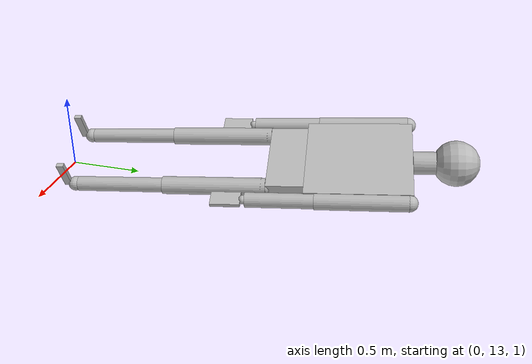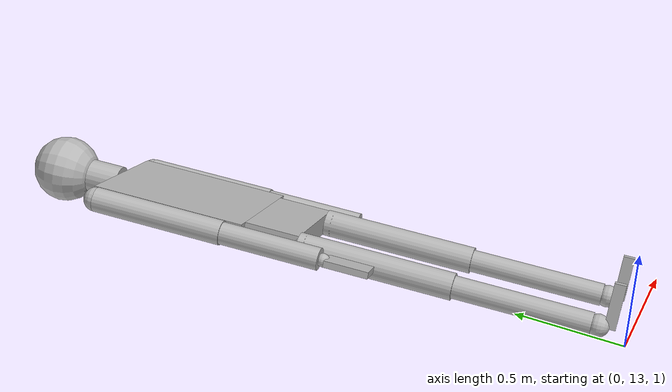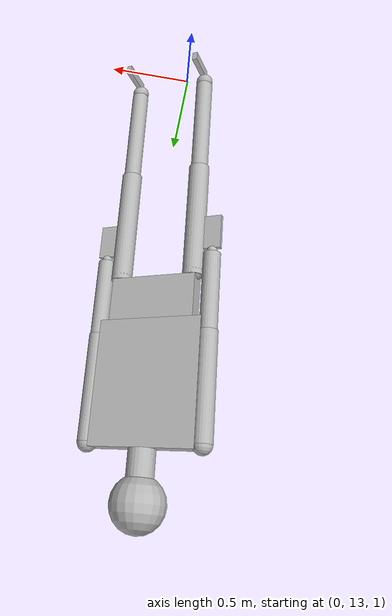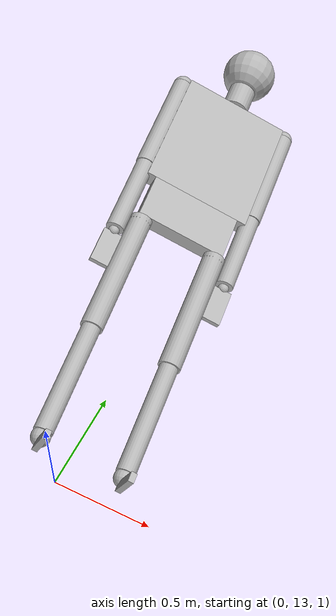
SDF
<sdf version="1.7">
 <world name="world_demo">
  <model name="ground_plane">
   <static>1</static>
   <link name="link">
    <collision name="collision">
     <geometry><plane><normal>0 0 1</normal><size>1 1</size></plane></geometry>
    </collision>
    <inertial>
     <mass>1</mass>
     <inertia><ixx>1</ixx><ixy>0</ixy><ixz>0</ixz><iyy>1</iyy><iyz>0</iyz><izz>1</izz></inertia>
    </inertial>
   </link>
  </model>
  <model name="ragdoll_clone">
   <pose>-0.072919 14.4451 1.18389 -1.39804 -1.16619 -0.042547</pose>
   <link name="hip">
    <inertial>
     <inertia><ixx>0.1</ixx><ixy>0</ixy><ixz>0</ixz><iyy>0.1</iyy><iyz>0</iyz><izz>0.1</izz></inertia>
     <mass>10</mass>
    </inertial>
    <collision name="hip_geom">
     <pose>0 0 0.125 0 -0 0</pose>
     <geometry><box><size>0.1 0.5 0.25</size></box></geometry>
     <surface>
      <friction><ode><mu>-1</mu><mu2>-1</mu2><fdir1>0 0 0</fdir1><slip1>0</slip1><slip2>0</slip2></ode></friction>
      <bounce><restitution_coefficient>0</restitution_coefficient><threshold>100000</threshold></bounce>
      <contact>
       <ode>
        <soft_cfm>0</soft_cfm>
        <soft_erp>0.2</soft_erp>
        <kp>1e+12</kp>
        <kd>1</kd>
        <max_vel>0</max_vel>
        <min_depth>0.001</min_depth>
       </ode>
      </contact>
     </surface>
    </collision>
    <visual name="hip_geom_visual">
     <pose>0 0 0.125 0 -0 0</pose>
     <geometry><box><size>0.1 0.5 0.25</size></box></geometry>
    </visual>
    <gravity>0</gravity>
   </link>
   <link name="l_thigh_pan">
    <pose>0 0.22 0 0 -0 0</pose>
    <inertial>
     <inertia><ixx>0.01</ixx><ixy>0</ixy><ixz>0</ixz><iyy>0.01</iyy><iyz>0</iyz><izz>0.01</izz></inertia>
     <mass>1</mass>
    </inertial>
    <collision name="l_thigh_pan_geom">
     <pose>0 0 -0.03 0 -0 0</pose>
     <geometry><sphere><radius>0.06</radius></sphere></geometry>
     <surface>
      <friction><ode><mu>-1</mu><mu2>-1</mu2><fdir1>0 0 0</fdir1><slip1>0</slip1><slip2>0</slip2></ode></friction>
      <bounce><restitution_coefficient>0</restitution_coefficient><threshold>100000</threshold></bounce>
      <contact>
       <ode>
        <soft_cfm>0</soft_cfm>
        <soft_erp>0.2</soft_erp>
        <kp>1e+12</kp>
        <kd>1</kd>
        <max_vel>0</max_vel>
        <min_depth>0.001</min_depth>
       </ode>
      </contact>
     </surface>
    </collision>
    <visual name="l_thigh_pan_geom_visual">
     <pose>0 0 -0.03 0 -0 0</pose>
     <geometry><sphere><radius>0.06</radius></sphere></geometry>
    </visual>
    <gravity>0</gravity>
   </link>
   <link name="l_thigh_lift">
    <pose>0 0.22 0 0 -0 0</pose>
    <inertial>
     <inertia><ixx>0.05</ixx><ixy>0</ixy><ixz>0</ixz><iyy>0.05</iyy><iyz>0</iyz><izz>0.05</izz></inertia>
     <mass>5</mass>
    </inertial>
    <collision name="l_thigh_lift_geom">
     <pose>0 0 -0.35 0 -0 0</pose>
     <geometry><cylinder><radius>0.06</radius><length>0.7</length></cylinder></geometry>
     <surface>
      <friction><ode><mu>-1</mu><mu2>-1</mu2><fdir1>0 0 0</fdir1><slip1>0</slip1><slip2>0</slip2></ode></friction>
      <bounce><restitution_coefficient>0</restitution_coefficient><threshold>100000</threshold></bounce>
      <contact>
       <ode>
        <soft_cfm>0</soft_cfm>
        <soft_erp>0.2</soft_erp>
        <kp>1e+12</kp>
        <kd>1</kd>
        <max_vel>0</max_vel>
        <min_depth>0.001</min_depth>
       </ode>
      </contact>
     </surface>
    </collision>
    <visual name="l_thigh_lift_geom_visual">
     <pose>0 0 -0.35 0 -0 0</pose>
     <geometry><cylinder><radius>0.06</radius><length>0.7</length></cylinder></geometry>
    </visual>
    <gravity>0</gravity>
   </link>
   <link name="l_calf">
    <pose>0 0.22 -0.7 0 -0 0</pose>
    <inertial>
     <inertia><ixx>0.02</ixx><ixy>0</ixy><ixz>0</ixz><iyy>0.02</iyy><iyz>0</iyz><izz>0.02</izz></inertia>
     <mass>2</mass>
    </inertial>
    <collision name="l_calf_geom">
     <pose>0 0 -0.3 0 -0 0</pose>
     <geometry><cylinder><radius>0.05</radius><length>0.6</length></cylinder></geometry>
     <surface>
      <friction><ode><mu>-1</mu><mu2>-1</mu2><fdir1>0 0 0</fdir1><slip1>0</slip1><slip2>0</slip2></ode></friction>
      <bounce><restitution_coefficient>0</restitution_coefficient><threshold>100000</threshold></bounce>
      <contact>
       <ode>
        <soft_cfm>0</soft_cfm>
        <soft_erp>0.2</soft_erp>
        <kp>1e+12</kp>
        <kd>1</kd>
        <max_vel>0</max_vel>
        <min_depth>0.001</min_depth>
       </ode>
      </contact>
     </surface>
    </collision>
    <visual name="l_calf_geom_visual">
     <pose>0 0 -0.3 0 -0 0</pose>
     <geometry><cylinder><radius>0.05</radius><length>0.6</length></cylinder></geometry>
    </visual>
    <gravity>0</gravity>
   </link>
   <link name="l_ankle">
    <pose>0 0.22 -1.325 0 -0 0</pose>
    <inertial>
     <inertia><ixx>0.01</ixx><ixy>0</ixy><ixz>0</ixz><iyy>0.01</iyy><iyz>0</iyz><izz>0.01</izz></inertia>
     <mass>1</mass>
    </inertial>
    <collision name="l_ankle_geom">
     <geometry><sphere><radius>0.05</radius></sphere></geometry>
     <surface>
      <friction><ode><mu>-1</mu><mu2>-1</mu2><fdir1>0 0 0</fdir1><slip1>0</slip1><slip2>0</slip2></ode></friction>
      <bounce><restitution_coefficient>0</restitution_coefficient><threshold>100000</threshold></bounce>
      <contact>
       <ode>
        <soft_cfm>0</soft_cfm>
        <soft_erp>0.2</soft_erp>
        <kp>1e+12</kp>
        <kd>1</kd>
        <max_vel>0</max_vel>
        <min_depth>0.001</min_depth>
       </ode>
      </contact>
     </surface>
    </collision>
    <visual name="l_ankle_geom_visual"><geometry><sphere><radius>0.05</radius></sphere></geometry></visual>
    <gravity>0</gravity>
   </link>
   <link name="l_foot">
    <pose>0 0.22 -1.35 0 -0 0</pose>
    <inertial>
     <pose>0.1 0 0 0 -0 0</pose>
     <inertia><ixx>0.01</ixx><ixy>0</ixy><ixz>0</ixz><iyy>0.01</iyy><iyz>0</iyz><izz>0.01</izz></inertia>
     <mass>1</mass>
    </inertial>
    <collision name="l_foot_geom">
     <pose>0.1 0 -0.025 0 -0 0</pose>
     <geometry><box><size>0.2 0.03 0.05</size></box></geometry>
     <surface>
      <friction><ode><mu>-1</mu><mu2>-1</mu2><fdir1>0 0 0</fdir1><slip1>0</slip1><slip2>0</slip2></ode></friction>
      <bounce><restitution_coefficient>0</restitution_coefficient><threshold>100000</threshold></bounce>
      <contact>
       <ode>
        <soft_cfm>0</soft_cfm>
        <soft_erp>0.2</soft_erp>
        <kp>1e+12</kp>
        <kd>1</kd>
        <max_vel>0</max_vel>
        <min_depth>0.001</min_depth>
       </ode>
      </contact>
     </surface>
    </collision>
    <visual name="l_foot_geom_visual">
     <pose>0.1 0 -0.025 0 -0 0</pose>
     <geometry><box><size>0.2 0.03 0.05</size></box></geometry>
    </visual>
   </link>
   <link name="r_thigh_pan">
    <pose>0 -0.22 0 0 -0 0</pose>
    <inertial>
     <inertia><ixx>0.01</ixx><ixy>0</ixy><ixz>0</ixz><iyy>0.01</iyy><iyz>0</iyz><izz>0.01</izz></inertia>
     <mass>1</mass>
    </inertial>
    <collision name="r_thigh_pan_geom">
     <pose>0 0 -0.03 0 -0 0</pose>
     <geometry><sphere><radius>0.06</radius></sphere></geometry>
     <surface>
      <friction><ode><mu>-1</mu><mu2>-1</mu2><fdir1>0 0 0</fdir1><slip1>0</slip1><slip2>0</slip2></ode></friction>
      <bounce><restitution_coefficient>0</restitution_coefficient><threshold>100000</threshold></bounce>
      <contact>
       <ode>
        <soft_cfm>0</soft_cfm>
        <soft_erp>0.2</soft_erp>
        <kp>1e+12</kp>
        <kd>1</kd>
        <max_vel>0</max_vel>
        <min_depth>0.001</min_depth>
       </ode>
      </contact>
     </surface>
    </collision>
    <visual name="r_thigh_pan_geom_visual">
     <pose>0 0 -0.03 0 -0 0</pose>
     <geometry><sphere><radius>0.06</radius></sphere></geometry>
    </visual>
    <gravity>0</gravity>
   </link>
   <link name="r_thigh_lift">
    <pose>0 -0.22 0 0 -0 0</pose>
    <inertial>
     <inertia><ixx>0.05</ixx><ixy>0</ixy><ixz>0</ixz><iyy>0.05</iyy><iyz>0</iyz><izz>0.05</izz></inertia>
     <mass>5</mass>
    </inertial>
    <collision name="r_thigh_lift_geom">
     <pose>0 0 -0.35 0 -0 0</pose>
     <geometry><cylinder><radius>0.06</radius><length>0.7</length></cylinder></geometry>
     <surface>
      <friction><ode><mu>-1</mu><mu2>-1</mu2><fdir1>0 0 0</fdir1><slip1>0</slip1><slip2>0</slip2></ode></friction>
      <bounce><restitution_coefficient>0</restitution_coefficient><threshold>100000</threshold></bounce>
      <contact>
       <ode>
        <soft_cfm>0</soft_cfm>
        <soft_erp>0.2</soft_erp>
        <kp>1e+12</kp>
        <kd>1</kd>
        <max_vel>0</max_vel>
        <min_depth>0.001</min_depth>
       </ode>
      </contact>
     </surface>
    </collision>
    <visual name="r_thigh_lift_geom_visual">
     <pose>0 0 -0.35 0 -0 0</pose>
     <geometry><cylinder><radius>0.06</radius><length>0.7</length></cylinder></geometry>
    </visual>
    <gravity>0</gravity>
   </link>
   <link name="r_calf">
    <pose>0 -0.22 -0.7 0 -0 0</pose>
    <inertial>
     <inertia><ixx>0.02</ixx><ixy>0</ixy><ixz>0</ixz><iyy>0.02</iyy><iyz>0</iyz><izz>0.02</izz></inertia>
     <mass>2</mass>
    </inertial>
    <collision name="r_calf_geom">
     <pose>0 0 -0.3 0 -0 0</pose>
     <geometry><cylinder><radius>0.05</radius><length>0.6</length></cylinder></geometry>
     <surface>
      <friction><ode><mu>-1</mu><mu2>-1</mu2><fdir1>0 0 0</fdir1><slip1>0</slip1><slip2>0</slip2></ode></friction>
      <bounce><restitution_coefficient>0</restitution_coefficient><threshold>100000</threshold></bounce>
      <contact>
       <ode>
        <soft_cfm>0</soft_cfm>
        <soft_erp>0.2</soft_erp>
        <kp>1e+12</kp>
        <kd>1</kd>
        <max_vel>0</max_vel>
        <min_depth>0.001</min_depth>
       </ode>
      </contact>
     </surface>
    </collision>
    <visual name="r_calf_geom_visual">
     <pose>0 0 -0.3 0 -0 0</pose>
     <geometry><cylinder><radius>0.05</radius><length>0.6</length></cylinder></geometry>
    </visual>
    <gravity>0</gravity>
   </link>
   <link name="r_ankle">
    <pose>0 -0.22 -1.325 0 -0 0</pose>
    <inertial>
     <inertia><ixx>0.01</ixx><ixy>0</ixy><ixz>0</ixz><iyy>0.01</iyy><iyz>0</iyz><izz>0.01</izz></inertia>
     <mass>1</mass>
    </inertial>
    <collision name="r_ankle_geom">
     <geometry><sphere><radius>0.05</radius></sphere></geometry>
     <surface>
      <friction><ode><mu>-1</mu><mu2>-1</mu2><fdir1>0 0 0</fdir1><slip1>0</slip1><slip2>0</slip2></ode></friction>
      <bounce><restitution_coefficient>0</restitution_coefficient><threshold>100000</threshold></bounce>
      <contact>
       <ode>
        <soft_cfm>0</soft_cfm>
        <soft_erp>0.2</soft_erp>
        <kp>1e+12</kp>
        <kd>1</kd>
        <max_vel>0</max_vel>
        <min_depth>0.001</min_depth>
       </ode>
      </contact>
     </surface>
    </collision>
    <visual name="r_ankle_geom_visual"><geometry><sphere><radius>0.05</radius></sphere></geometry></visual>
    <gravity>0</gravity>
   </link>
   <link name="r_foot">
    <pose>0 -0.22 -1.35 0 -0 0</pose>
    <inertial>
     <pose>0.1 0 0 0 -0 0</pose>
     <inertia><ixx>0.01</ixx><ixy>0</ixy><ixz>0</ixz><iyy>0.01</iyy><iyz>0</iyz><izz>0.01</izz></inertia>
     <mass>1</mass>
    </inertial>
    <collision name="r_foot_geom">
     <pose>0.1 0 -0.025 0 -0 0</pose>
     <geometry><box><size>0.2 0.03 0.05</size></box></geometry>
     <surface>
      <friction><ode><mu>-1</mu><mu2>-1</mu2><fdir1>0 0 0</fdir1><slip1>0</slip1><slip2>0</slip2></ode></friction>
      <bounce><restitution_coefficient>0</restitution_coefficient><threshold>100000</threshold></bounce>
      <contact>
       <ode>
        <soft_cfm>0</soft_cfm>
        <soft_erp>0.2</soft_erp>
        <kp>1e+12</kp>
        <kd>1</kd>
        <max_vel>0</max_vel>
        <min_depth>0.001</min_depth>
       </ode>
      </contact>
     </surface>
    </collision>
    <visual name="r_foot_geom_visual">
     <pose>0.1 0 -0.025 0 -0 0</pose>
     <geometry><box><size>0.2 0.03 0.05</size></box></geometry>
    </visual>
   </link>
   <link name="torso">
    <pose>0 0 0.25 0 -0 0</pose>
    <inertial>
     <inertia><ixx>0.3</ixx><ixy>0</ixy><ixz>0</ixz><iyy>0.3</iyy><iyz>0</iyz><izz>0.3</izz></inertia>
     <mass>30</mass>
    </inertial>
    <collision name="torso_geom">
     <pose>0 0 0.35 0 -0 0</pose>
     <geometry><box><size>0.1 0.6 0.7</size></box></geometry>
     <surface>
      <friction><ode><mu>-1</mu><mu2>-1</mu2><fdir1>0 0 0</fdir1><slip1>0</slip1><slip2>0</slip2></ode></friction>
      <bounce><restitution_coefficient>0</restitution_coefficient><threshold>100000</threshold></bounce>
      <contact>
       <ode>
        <soft_cfm>0</soft_cfm>
        <soft_erp>0.2</soft_erp>
        <kp>1e+12</kp>
        <kd>1</kd>
        <max_vel>0</max_vel>
        <min_depth>0.001</min_depth>
       </ode>
      </contact>
     </surface>
    </collision>
    <visual name="torso_geom_visual">
     <pose>0 0 0.35 0 -0 0</pose>
     <geometry><box><size>0.1 0.6 0.7</size></box></geometry>
    </visual>
    <gravity>0</gravity>
   </link>
   <link name="l_shoulder">
    <pose>0 0.3275 0.9225 0 -0 0</pose>
    <inertial>
     <inertia><ixx>0.01</ixx><ixy>0</ixy><ixz>0</ixz><iyy>0.01</iyy><iyz>0</iyz><izz>0.01</izz></inertia>
     <mass>1</mass>
    </inertial>
    <collision name="l_shoulder_geom">
     <geometry><sphere><radius>0.055</radius></sphere></geometry>
     <surface>
      <friction><ode><mu>-1</mu><mu2>-1</mu2><fdir1>0 0 0</fdir1><slip1>0</slip1><slip2>0</slip2></ode></friction>
      <bounce><restitution_coefficient>0</restitution_coefficient><threshold>100000</threshold></bounce>
      <contact>
       <ode>
        <soft_cfm>0</soft_cfm>
        <soft_erp>0.2</soft_erp>
        <kp>1e+12</kp>
        <kd>1</kd>
        <max_vel>0</max_vel>
        <min_depth>0.001</min_depth>
       </ode>
      </contact>
     </surface>
    </collision>
    <visual name="l_shoulder_geom_visual"><geometry><sphere><radius>0.055</radius></sphere></geometry></visual>
    <gravity>0</gravity>
   </link>
   <link name="l_upper_arm">
    <pose>0 0.3275 0.9225 0 -0 0</pose>
    <inertial>
     <inertia><ixx>0.02</ixx><ixy>0</ixy><ixz>0</ixz><iyy>0.02</iyy><iyz>0</iyz><izz>0.02</izz></inertia>
     <mass>2</mass>
    </inertial>
    <collision name="l_upper_arm_geom">
     <pose>0 0 -0.3 0 -0 0</pose>
     <geometry><cylinder><radius>0.055</radius><length>0.6</length></cylinder></geometry>
     <surface>
      <friction><ode><mu>-1</mu><mu2>-1</mu2><fdir1>0 0 0</fdir1><slip1>0</slip1><slip2>0</slip2></ode></friction>
      <bounce><restitution_coefficient>0</restitution_coefficient><threshold>100000</threshold></bounce>
      <contact>
       <ode>
        <soft_cfm>0</soft_cfm>
        <soft_erp>0.2</soft_erp>
        <kp>1e+12</kp>
        <kd>1</kd>
        <max_vel>0</max_vel>
        <min_depth>0.001</min_depth>
       </ode>
      </contact>
     </surface>
    </collision>
    <visual name="l_upper_arm_geom_visual">
     <pose>0 0 -0.3 0 -0 0</pose>
     <geometry><cylinder><radius>0.055</radius><length>0.6</length></cylinder></geometry>
    </visual>
    <gravity>0</gravity>
   </link>
   <link name="l_forearm">
    <pose>0 0.3275 0.3225 0 -0 0</pose>
    <inertial>
     <inertia><ixx>0.01</ixx><ixy>0</ixy><ixz>0</ixz><iyy>0.01</iyy><iyz>0</iyz><izz>0.01</izz></inertia>
     <mass>1</mass>
    </inertial>
    <collision name="l_forearm_geom">
     <pose>0 0 -0.225 0 -0 0</pose>
     <geometry><cylinder><radius>0.05</radius><length>0.45</length></cylinder></geometry>
     <surface>
      <friction><ode><mu>-1</mu><mu2>-1</mu2><fdir1>0 0 0</fdir1><slip1>0</slip1><slip2>0</slip2></ode></friction>
      <bounce><restitution_coefficient>0</restitution_coefficient><threshold>100000</threshold></bounce>
      <contact>
       <ode>
        <soft_cfm>0</soft_cfm>
        <soft_erp>0.2</soft_erp>
        <kp>1e+12</kp>
        <kd>1</kd>
        <max_vel>0</max_vel>
        <min_depth>0.001</min_depth>
       </ode>
      </contact>
     </surface>
    </collision>
    <visual name="l_forearm_geom_visual">
     <pose>0 0 -0.225 0 -0 0</pose>
     <geometry><cylinder><radius>0.05</radius><length>0.45</length></cylinder></geometry>
    </visual>
    <gravity>0</gravity>
   </link>
   <link name="l_wrist">
    <pose>0 0.3275 -0.1425 0 -0 0</pose>
    <inertial>
     <inertia><ixx>0.01</ixx><ixy>0</ixy><ixz>0</ixz><iyy>0.01</iyy><iyz>0</iyz><izz>0.01</izz></inertia>
     <mass>1</mass>
    </inertial>
    <collision name="l_wrist_geom">
     <geometry><sphere><radius>0.03</radius></sphere></geometry>
     <surface>
      <friction><ode><mu>-1</mu><mu2>-1</mu2><fdir1>0 0 0</fdir1><slip1>0</slip1><slip2>0</slip2></ode></friction>
      <bounce><restitution_coefficient>0</restitution_coefficient><threshold>100000</threshold></bounce>
      <contact>
       <ode>
        <soft_cfm>0</soft_cfm>
        <soft_erp>0.2</soft_erp>
        <kp>1e+12</kp>
        <kd>1</kd>
        <max_vel>0</max_vel>
        <min_depth>0.001</min_depth>
       </ode>
      </contact>
     </surface>
    </collision>
    <visual name="l_wrist_geom_visual"><geometry><sphere><radius>0.03</radius></sphere></geometry></visual>
    <gravity>0</gravity>
   </link>
   <link name="l_hand">
    <pose>0 0.3275 -0.1575 0 -0 0</pose>
    <inertial>
     <inertia><ixx>0.01</ixx><ixy>0</ixy><ixz>0</ixz><iyy>0.01</iyy><iyz>0</iyz><izz>0.01</izz></inertia>
     <mass>1</mass>
    </inertial>
    <collision name="l_hand_geom">
     <pose>0 0 -0.1 0 -0 0</pose>
     <geometry><box><size>0.03 0.1 0.2</size></box></geometry>
     <surface>
      <friction><ode><mu>-1</mu><mu2>-1</mu2><fdir1>0 0 0</fdir1><slip1>0</slip1><slip2>0</slip2></ode></friction>
      <bounce><restitution_coefficient>0</restitution_coefficient><threshold>100000</threshold></bounce>
      <contact>
       <ode>
        <soft_cfm>0</soft_cfm>
        <soft_erp>0.2</soft_erp>
        <kp>1e+12</kp>
        <kd>1</kd>
        <max_vel>0</max_vel>
        <min_depth>0.001</min_depth>
       </ode>
      </contact>
     </surface>
    </collision>
    <visual name="l_hand_geom_visual">
     <pose>0 0 -0.1 0 -0 0</pose>
     <geometry><box><size>0.03 0.1 0.2</size></box></geometry>
    </visual>
    <gravity>0</gravity>
   </link>
   <link name="neck">
    <pose>0 0 0.95 0 -0 0</pose>
    <inertial>
     <inertia><ixx>0.01</ixx><ixy>0</ixy><ixz>0</ixz><iyy>0.01</iyy><iyz>0</iyz><izz>0.01</izz></inertia>
     <mass>1</mass>
    </inertial>
    <collision name="neck_geom">
     <pose>0 0 0.1 0 -0 0</pose>
     <geometry><cylinder><radius>0.075</radius><length>0.2</length></cylinder></geometry>
     <surface>
      <friction><ode><mu>-1</mu><mu2>-1</mu2><fdir1>0 0 0</fdir1><slip1>0</slip1><slip2>0</slip2></ode></friction>
      <bounce><restitution_coefficient>0</restitution_coefficient><threshold>100000</threshold></bounce>
      <contact>
       <ode>
        <soft_cfm>0</soft_cfm>
        <soft_erp>0.2</soft_erp>
        <kp>1e+12</kp>
        <kd>1</kd>
        <max_vel>0</max_vel>
        <min_depth>0.001</min_depth>
       </ode>
      </contact>
     </surface>
    </collision>
    <visual name="neck_geom_visual">
     <pose>0 0 0.1 0 -0 0</pose>
     <geometry><cylinder><radius>0.075</radius><length>0.2</length></cylinder></geometry>
    </visual>
    <gravity>0</gravity>
   </link>
   <link name="head">
    <pose>0 0 1.225 0 -0 0</pose>
    <inertial>
     <inertia><ixx>0.1</ixx><ixy>0</ixy><ixz>0</ixz><iyy>0.1</iyy><iyz>0</iyz><izz>0.1</izz></inertia>
     <mass>10</mass>
    </inertial>
    <collision name="head_geom">
     <geometry><sphere><radius>0.15</radius></sphere></geometry>
     <surface>
      <friction><ode><mu>-1</mu><mu2>-1</mu2><fdir1>0 0 0</fdir1><slip1>0</slip1><slip2>0</slip2></ode></friction>
      <bounce><restitution_coefficient>0</restitution_coefficient><threshold>100000</threshold></bounce>
      <contact>
       <ode>
        <soft_cfm>0</soft_cfm>
        <soft_erp>0.2</soft_erp>
        <kp>1e+12</kp>
        <kd>1</kd>
        <max_vel>0</max_vel>
        <min_depth>0.001</min_depth>
       </ode>
      </contact>
     </surface>
    </collision>
    <visual name="head_geom_visual"><geometry><sphere><radius>0.15</radius></sphere></geometry></visual>
    <gravity>0</gravity>
   </link>
   <link name="r_shoulder">
    <pose>0 -0.3275 0.9225 0 -0 0</pose>
    <inertial>
     <inertia><ixx>0.01</ixx><ixy>0</ixy><ixz>0</ixz><iyy>0.01</iyy><iyz>0</iyz><izz>0.01</izz></inertia>
     <mass>1</mass>
    </inertial>
    <collision name="r_shoulder_geom">
     <geometry><sphere><radius>0.055</radius></sphere></geometry>
     <surface>
      <friction><ode><mu>-1</mu><mu2>-1</mu2><fdir1>0 0 0</fdir1><slip1>0</slip1><slip2>0</slip2></ode></friction>
      <bounce><restitution_coefficient>0</restitution_coefficient><threshold>100000</threshold></bounce>
      <contact>
       <ode>
        <soft_cfm>0</soft_cfm>
        <soft_erp>0.2</soft_erp>
        <kp>1e+12</kp>
        <kd>1</kd>
        <max_vel>0</max_vel>
        <min_depth>0.001</min_depth>
       </ode>
      </contact>
     </surface>
    </collision>
    <visual name="r_shoulder_geom_visual"><geometry><sphere><radius>0.055</radius></sphere></geometry></visual>
    <gravity>0</gravity>
   </link>
   <link name="r_upper_arm">
    <pose>0 -0.3275 0.9225 0 -0 0</pose>
    <inertial>
     <inertia><ixx>0.02</ixx><ixy>0</ixy><ixz>0</ixz><iyy>0.02</iyy><iyz>0</iyz><izz>0.02</izz></inertia>
     <mass>2</mass>
    </inertial>
    <collision name="r_upper_arm_geom">
     <pose>0 0 -0.3 0 -0 0</pose>
     <geometry><cylinder><radius>0.055</radius><length>0.6</length></cylinder></geometry>
     <surface>
      <friction><ode><mu>-1</mu><mu2>-1</mu2><fdir1>0 0 0</fdir1><slip1>0</slip1><slip2>0</slip2></ode></friction>
      <bounce><restitution_coefficient>0</restitution_coefficient><threshold>100000</threshold></bounce>
      <contact>
       <ode>
        <soft_cfm>0</soft_cfm>
        <soft_erp>0.2</soft_erp>
        <kp>1e+12</kp>
        <kd>1</kd>
        <max_vel>0</max_vel>
        <min_depth>0.001</min_depth>
       </ode>
      </contact>
     </surface>
    </collision>
    <visual name="r_upper_arm_geom_visual">
     <pose>0 0 -0.3 0 -0 0</pose>
     <geometry><cylinder><radius>0.055</radius><length>0.6</length></cylinder></geometry>
    </visual>
    <gravity>0</gravity>
   </link>
   <link name="r_forearm">
    <pose>0 -0.3275 0.3225 0 -0 0</pose>
    <inertial>
     <inertia><ixx>0.01</ixx><ixy>0</ixy><ixz>0</ixz><iyy>0.01</iyy><iyz>0</iyz><izz>0.01</izz></inertia>
     <mass>1</mass>
    </inertial>
    <collision name="r_forearm_geom">
     <pose>0 0 -0.225 0 -0 0</pose>
     <geometry><cylinder><radius>0.05</radius><length>0.45</length></cylinder></geometry>
     <surface>
      <friction><ode><mu>-1</mu><mu2>-1</mu2><fdir1>0 0 0</fdir1><slip1>0</slip1><slip2>0</slip2></ode></friction>
      <bounce><restitution_coefficient>0</restitution_coefficient><threshold>100000</threshold></bounce>
      <contact>
       <ode>
        <soft_cfm>0</soft_cfm>
        <soft_erp>0.2</soft_erp>
        <kp>1e+12</kp>
        <kd>1</kd>
        <max_vel>0</max_vel>
        <min_depth>0.001</min_depth>
       </ode>
      </contact>
     </surface>
    </collision>
    <visual name="r_forearm_geom_visual">
     <pose>0 0 -0.225 0 -0 0</pose>
     <geometry><cylinder><radius>0.05</radius><length>0.45</length></cylinder></geometry>
    </visual>
    <gravity>0</gravity>
   </link>
   <link name="r_wrist">
    <pose>0 -0.3275 -0.1425 0 -0 0</pose>
    <inertial>
     <inertia><ixx>0.01</ixx><ixy>0</ixy><ixz>0</ixz><iyy>0.01</iyy><iyz>0</iyz><izz>0.01</izz></inertia>
     <mass>1</mass>
    </inertial>
    <collision name="r_wrist_geom">
     <geometry><sphere><radius>0.03</radius></sphere></geometry>
     <surface>
      <friction><ode><mu>-1</mu><mu2>-1</mu2><fdir1>0 0 0</fdir1><slip1>0</slip1><slip2>0</slip2></ode></friction>
      <bounce><restitution_coefficient>0</restitution_coefficient><threshold>100000</threshold></bounce>
      <contact>
       <ode>
        <soft_cfm>0</soft_cfm>
        <soft_erp>0.2</soft_erp>
        <kp>1e+12</kp>
        <kd>1</kd>
        <max_vel>0</max_vel>
        <min_depth>0.001</min_depth>
       </ode>
      </contact>
     </surface>
    </collision>
    <visual name="r_wrist_geom_visual"><geometry><sphere><radius>0.03</radius></sphere></geometry></visual>
    <gravity>0</gravity>
   </link>
   <link name="r_hand">
    <pose>0 -0.3275 -0.1575 0 -0 0</pose>
    <inertial>
     <inertia><ixx>0.01</ixx><ixy>0</ixy><ixz>0</ixz><iyy>0.01</iyy><iyz>0</iyz><izz>0.01</izz></inertia>
     <mass>1</mass>
    </inertial>
    <collision name="r_hand_geom">
     <pose>0 0 -0.1 0 -0 0</pose>
     <geometry><box><size>0.03 0.1 0.2</size></box></geometry>
     <surface>
      <friction><ode><mu>-1</mu><mu2>-1</mu2><fdir1>0 0 0</fdir1><slip1>0</slip1><slip2>0</slip2></ode></friction>
      <bounce><restitution_coefficient>0</restitution_coefficient><threshold>100000</threshold></bounce>
      <contact>
       <ode>
        <soft_cfm>0</soft_cfm>
        <soft_erp>0.2</soft_erp>
        <kp>1e+12</kp>
        <kd>1</kd>
        <max_vel>0</max_vel>
        <min_depth>0.001</min_depth>
       </ode>
      </contact>
     </surface>
    </collision>
    <visual name="r_hand_geom_visual">
     <pose>0 0 -0.1 0 -0 0</pose>
     <geometry><box><size>0.03 0.1 0.2</size></box></geometry>
    </visual>
    <gravity>0</gravity>
   </link>
   <joint name="l_thigh_pan_joint" type="revolute">
    <parent>hip</parent>
    <child>l_thigh_pan</child>
    <axis>
     <dynamics>
      <damping>0</damping>
      <friction>0</friction>
      <spring_reference>0</spring_reference>
      <spring_stiffness>0</spring_stiffness>
     </dynamics>
     <limit><lower>-1.5708</lower><upper>1.5708</upper><effort>0</effort><velocity>0</velocity></limit>
     <xyz expressed_in="__model__">0 0 1</xyz>
    </axis>
   </joint>
   <joint name="l_thigh_lift_joint" type="revolute">
    <parent>l_thigh_pan</parent>
    <child>l_thigh_lift</child>
    <axis>
     <dynamics>
      <damping>0</damping>
      <friction>0</friction>
      <spring_reference>0</spring_reference>
      <spring_stiffness>0</spring_stiffness>
     </dynamics>
     <limit><lower>-1.5708</lower><upper>1.5708</upper><effort>0</effort><velocity>0</velocity></limit>
     <xyz expressed_in="__model__">0 1 0</xyz>
    </axis>
   </joint>
   <joint name="l_calf_joint" type="revolute">
    <parent>l_thigh_lift</parent>
    <child>l_calf</child>
    <axis>
     <dynamics>
      <damping>0</damping>
      <friction>0</friction>
      <spring_reference>0</spring_reference>
      <spring_stiffness>0</spring_stiffness>
     </dynamics>
     <limit><lower>-1.5708</lower><upper>1.5708</upper><effort>0</effort><velocity>0</velocity></limit>
     <xyz expressed_in="__model__">0 1 0</xyz>
    </axis>
   </joint>
   <joint name="l_ankle_joint" type="revolute">
    <parent>l_calf</parent>
    <child>l_ankle</child>
    <axis>
     <dynamics>
      <damping>0</damping>
      <friction>0</friction>
      <spring_reference>0</spring_reference>
      <spring_stiffness>0</spring_stiffness>
     </dynamics>
     <limit><lower>-1.5708</lower><upper>1.5708</upper><effort>0</effort><velocity>0</velocity></limit>
     <xyz expressed_in="__model__">0 1 0</xyz>
    </axis>
   </joint>
   <joint name="l_foot_joint" type="revolute">
    <parent>l_ankle</parent>
    <child>l_foot</child>
    <axis>
     <dynamics>
      <damping>0</damping>
      <friction>0</friction>
      <spring_reference>0</spring_reference>
      <spring_stiffness>0</spring_stiffness>
     </dynamics>
     <limit><lower>-1.5708</lower><upper>1.5708</upper><effort>0</effort><velocity>0</velocity></limit>
     <xyz expressed_in="__model__">1 0 0</xyz>
    </axis>
   </joint>
   <joint name="r_thigh_pan_joint" type="revolute">
    <parent>hip</parent>
    <child>r_thigh_pan</child>
    <axis>
     <dynamics>
      <damping>0</damping>
      <friction>0</friction>
      <spring_reference>0</spring_reference>
      <spring_stiffness>0</spring_stiffness>
     </dynamics>
     <limit><lower>-1.5708</lower><upper>1.5708</upper><effort>0</effort><velocity>0</velocity></limit>
     <xyz expressed_in="__model__">0 0 1</xyz>
    </axis>
   </joint>
   <joint name="r_thigh_lift_joint" type="revolute">
    <parent>r_thigh_pan</parent>
    <child>r_thigh_lift</child>
    <axis>
     <dynamics>
      <damping>0</damping>
      <friction>0</friction>
      <spring_reference>0</spring_reference>
      <spring_stiffness>0</spring_stiffness>
     </dynamics>
     <limit><lower>-1.5708</lower><upper>1.5708</upper><effort>0</effort><velocity>0</velocity></limit>
     <xyz expressed_in="__model__">0 1 0</xyz>
    </axis>
   </joint>
   <joint name="r_calf_joint" type="revolute">
    <parent>r_thigh_lift</parent>
    <child>r_calf</child>
    <axis>
     <dynamics>
      <damping>0</damping>
      <friction>0</friction>
      <spring_reference>0</spring_reference>
      <spring_stiffness>0</spring_stiffness>
     </dynamics>
     <limit><lower>-1.5708</lower><upper>1.5708</upper><effort>0</effort><velocity>0</velocity></limit>
     <xyz expressed_in="__model__">0 1 0</xyz>
    </axis>
   </joint>
   <joint name="r_ankle_joint" type="revolute">
    <parent>r_calf</parent>
    <child>r_ankle</child>
    <axis>
     <dynamics>
      <damping>0</damping>
      <friction>0</friction>
      <spring_reference>0</spring_reference>
      <spring_stiffness>0</spring_stiffness>
     </dynamics>
     <limit><lower>-1.5708</lower><upper>1.5708</upper><effort>0</effort><velocity>0</velocity></limit>
     <xyz expressed_in="__model__">0 1 0</xyz>
    </axis>
   </joint>
   <joint name="r_foot_joint" type="revolute">
    <parent>r_ankle</parent>
    <child>r_foot</child>
    <axis>
     <dynamics>
      <damping>0</damping>
      <friction>0</friction>
      <spring_reference>0</spring_reference>
      <spring_stiffness>0</spring_stiffness>
     </dynamics>
     <limit><lower>-1.5708</lower><upper>1.5708</upper><effort>0</effort><velocity>0</velocity></limit>
     <xyz expressed_in="__model__">1 0 0</xyz>
    </axis>
   </joint>
   <joint name="torso_joint" type="revolute">
    <parent>hip</parent>
    <child>torso</child>
    <axis>
     <dynamics>
      <damping>0</damping>
      <friction>0</friction>
      <spring_reference>0</spring_reference>
      <spring_stiffness>0</spring_stiffness>
     </dynamics>
     <limit><lower>-1.5708</lower><upper>1.5708</upper><effort>0</effort><velocity>0</velocity></limit>
     <xyz expressed_in="__model__">0 1 0</xyz>
    </axis>
   </joint>
   <joint name="l_shoulder_joint" type="revolute">
    <parent>torso</parent>
    <child>l_shoulder</child>
    <axis>
     <dynamics>
      <damping>0</damping>
      <friction>0</friction>
      <spring_reference>0</spring_reference>
      <spring_stiffness>0</spring_stiffness>
     </dynamics>
     <limit><lower>-1.5708</lower><upper>1.5708</upper><effort>0</effort><velocity>0</velocity></limit>
     <xyz expressed_in="__model__">1 0 0</xyz>
    </axis>
   </joint>
   <joint name="l_upper_arm_joint" type="revolute">
    <parent>l_shoulder</parent>
    <child>l_upper_arm</child>
    <axis>
     <dynamics>
      <damping>0</damping>
      <friction>0</friction>
      <spring_reference>0</spring_reference>
      <spring_stiffness>0</spring_stiffness>
     </dynamics>
     <limit><lower>-1.5708</lower><upper>1.5708</upper><effort>0</effort><velocity>0</velocity></limit>
     <xyz expressed_in="__model__">0 1 0</xyz>
    </axis>
   </joint>
   <joint name="l_forearm_joint" type="revolute">
    <parent>l_upper_arm</parent>
    <child>l_forearm</child>
    <axis>
     <dynamics>
      <damping>0</damping>
      <friction>0</friction>
      <spring_reference>0</spring_reference>
      <spring_stiffness>0</spring_stiffness>
     </dynamics>
     <limit><lower>-1.5708</lower><upper>1.5708</upper><effort>0</effort><velocity>0</velocity></limit>
     <xyz expressed_in="__model__">0 1 0</xyz>
    </axis>
   </joint>
   <joint name="l_wrist_joint" type="revolute">
    <parent>l_forearm</parent>
    <child>l_wrist</child>
    <axis>
     <dynamics>
      <damping>0</damping>
      <friction>0</friction>
      <spring_reference>0</spring_reference>
      <spring_stiffness>0</spring_stiffness>
     </dynamics>
     <limit><lower>-1.5708</lower><upper>1.5708</upper><effort>0</effort><velocity>0</velocity></limit>
     <xyz expressed_in="__model__">0 1 0</xyz>
    </axis>
   </joint>
   <joint name="l_hand_joint" type="revolute">
    <parent>l_wrist</parent>
    <child>l_hand</child>
    <axis>
     <dynamics>
      <damping>0</damping>
      <friction>0</friction>
      <spring_reference>0</spring_reference>
      <spring_stiffness>0</spring_stiffness>
     </dynamics>
     <limit><lower>-1.5708</lower><upper>1.5708</upper><effort>0</effort><velocity>0</velocity></limit>
     <xyz expressed_in="__model__">0 1 0</xyz>
    </axis>
   </joint>
   <joint name="neck_joint" type="revolute">
    <parent>torso</parent>
    <child>neck</child>
    <axis>
     <dynamics>
      <damping>0</damping>
      <friction>0</friction>
      <spring_reference>0</spring_reference>
      <spring_stiffness>0</spring_stiffness>
     </dynamics>
     <limit><lower>-1.5708</lower><upper>1.5708</upper><effort>0</effort><velocity>0</velocity></limit>
     <xyz expressed_in="__model__">0 0 1</xyz>
    </axis>
   </joint>
   <joint name="head_joint" type="revolute">
    <parent>neck</parent>
    <child>head</child>
    <axis>
     <dynamics>
      <damping>0</damping>
      <friction>0</friction>
      <spring_reference>0</spring_reference>
      <spring_stiffness>0</spring_stiffness>
     </dynamics>
     <limit><lower>-1.5708</lower><upper>1.5708</upper><effort>0</effort><velocity>0</velocity></limit>
     <xyz expressed_in="__model__">0 1 0</xyz>
    </axis>
   </joint>
   <joint name="r_shoulder_joint" type="revolute">
    <parent>torso</parent>
    <child>r_shoulder</child>
    <axis>
     <dynamics>
      <damping>0</damping>
      <friction>0</friction>
      <spring_reference>0</spring_reference>
      <spring_stiffness>0</spring_stiffness>
     </dynamics>
     <limit><lower>-1.5708</lower><upper>1.5708</upper><effort>0</effort><velocity>0</velocity></limit>
     <xyz expressed_in="__model__">1 0 0</xyz>
    </axis>
   </joint>
   <joint name="r_upper_arm_joint" type="revolute">
    <parent>r_shoulder</parent>
    <child>r_upper_arm</child>
    <axis>
     <dynamics>
      <damping>0</damping>
      <friction>0</friction>
      <spring_reference>0</spring_reference>
      <spring_stiffness>0</spring_stiffness>
     </dynamics>
     <limit><lower>-1.5708</lower><upper>1.5708</upper><effort>0</effort><velocity>0</velocity></limit>
     <xyz expressed_in="__model__">0 1 0</xyz>
    </axis>
   </joint>
   <joint name="r_forearm_joint" type="revolute">
    <parent>r_upper_arm</parent>
    <child>r_forearm</child>
    <axis>
     <dynamics>
      <damping>0</damping>
      <friction>0</friction>
      <spring_reference>0</spring_reference>
      <spring_stiffness>0</spring_stiffness>
     </dynamics>
     <limit><lower>-1.5708</lower><upper>1.5708</upper><effort>0</effort><velocity>0</velocity></limit>
     <xyz expressed_in="__model__">0 1 0</xyz>
    </axis>
   </joint>
   <joint name="r_wrist_joint" type="revolute">
    <parent>r_forearm</parent>
    <child>r_wrist</child>
    <axis>
     <dynamics>
      <damping>0</damping>
      <friction>0</friction>
      <spring_reference>0</spring_reference>
      <spring_stiffness>0</spring_stiffness>
     </dynamics>
     <limit><lower>-1.5708</lower><upper>1.5708</upper><effort>0</effort><velocity>0</velocity></limit>
     <xyz expressed_in="__model__">0 1 0</xyz>
    </axis>
   </joint>
   <joint name="r_hand_joint" type="revolute">
    <parent>r_wrist</parent>
    <child>r_hand</child>
    <axis>
     <dynamics>
      <damping>0</damping>
      <friction>0</friction>
      <spring_reference>0</spring_reference>
      <spring_stiffness>0</spring_stiffness>
     </dynamics>
     <limit><lower>-1.5708</lower><upper>1.5708</upper><effort>0</effort><velocity>0</velocity></limit>
     <xyz expressed_in="__model__">0 1 0</xyz>
    </axis>
   </joint>
   <static>0</static>
  </model>
 </world>
</sdf>
